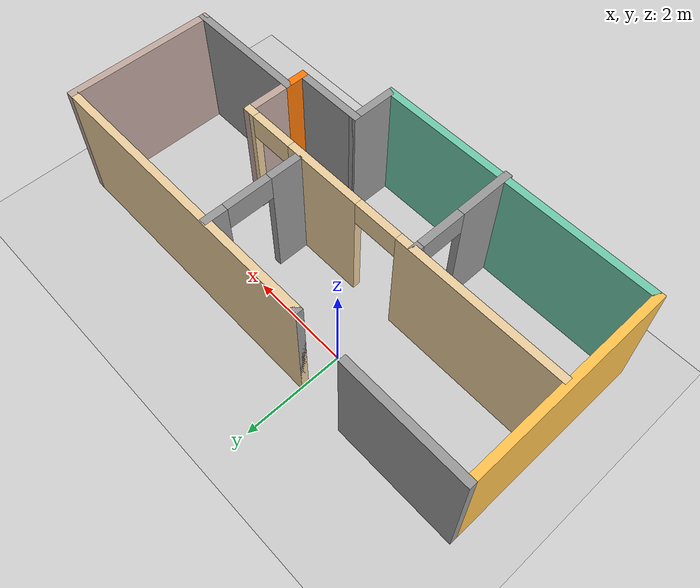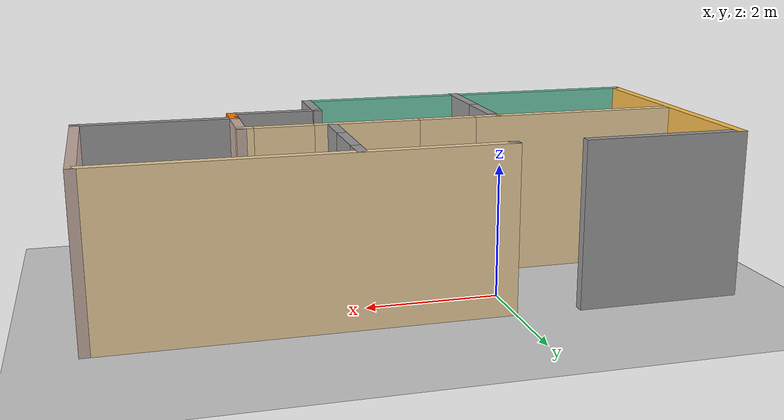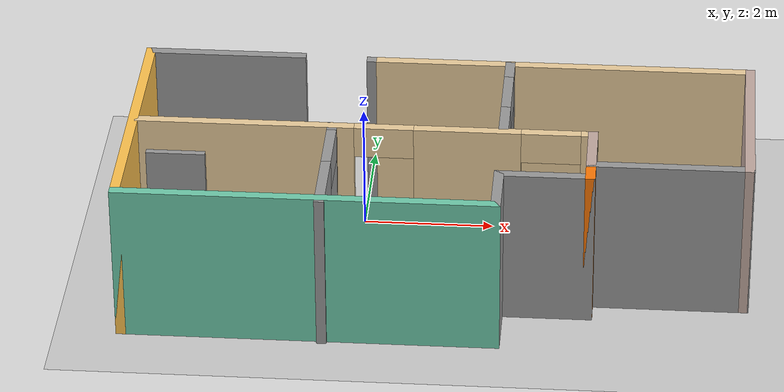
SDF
<sdf version="1.6">
 <world name="default">
  <light name="sun" type="directional">
   <pose>0 0 10 0 -0 0</pose>
   <diffuse>0.8 0.8 0.8 1</diffuse>
   <specular>0.2 0.2 0.2 1</specular>
   <attenuation>
    <range>1000</range>
    <constant>0.9</constant>
    <linear>0.01</linear>
    <quadratic>0.001</quadratic>
   </attenuation>
   <direction>-0.5 0.1 -0.9</direction>
  </light>
  <model name="ground_plane">
   <static>1</static>
   <link name="link">
    <collision name="collision">
     <geometry><plane><normal>0 0 1</normal><size>100 100</size></plane></geometry>
     <surface><friction><ode><mu>100</mu><mu2>50</mu2></ode></friction></surface>
    </collision>
    <visual name="visual">
     <cast_shadows>0</cast_shadows>
     <geometry><plane><normal>0 0 1</normal><size>100 100</size></plane></geometry>
     <material>
      <script><uri>file://media/materials/scripts/gazebo.material</uri><name>Gazebo/Grey</name></script>
     </material>
    </visual>
   </link>
  </model>
  <gravity>0 0 -9.8</gravity>
  <magnetic_field>6e-06 2.3e-05 -4.2e-05</magnetic_field>
  <atmosphere type="adiabatic"/>
  <physics name="default_physics" default="0" type="ode">
   <max_step_size>0.001</max_step_size>
   <real_time_factor>1</real_time_factor>
   <real_time_update_rate>1000</real_time_update_rate>
  </physics>
  <scene><ambient>0.4 0.4 0.4 1</ambient><background>0.7 0.7 0.7 1</background><shadows>1</shadows></scene>
  <spherical_coordinates>
   <surface_model>EARTH_WGS84</surface_model>
   <latitude_deg>0</latitude_deg>
   <longitude_deg>0</longitude_deg>
   <elevation>0</elevation>
   <heading_deg>0</heading_deg>
  </spherical_coordinates>
  <model name="building2">
   <pose>1.26202 -1.26646 0 0 -0 0</pose>
   <link name="Door_3">
    <collision name="Door_3_Collision">
     <geometry><box><size>0.9 0.17 2</size></box></geometry>
     <pose>0 0 1 0 -0 0</pose>
    </collision>
    <visual name="Door_3_Visual">
     <pose>0 0 1 0 -0 0</pose>
     <geometry><box><size>0.9 0.17 2</size></box></geometry>
     <material>
      <script><uri>file://media/materials/scripts/gazebo.material</uri><name>Gazebo/Grey</name></script>
     </material>
    </visual>
    <pose>-4.01 -0.065 0 0 -0 0</pose>
   </link>
   <link name="Wall_0">
    <collision name="Wall_0_Collision">
     <geometry><box><size>2.5 0.15 2.5</size></box></geometry>
     <pose>0 0 1.25 0 -0 0</pose>
    </collision>
    <visual name="Wall_0_Visual">
     <pose>0 0 1.25 0 -0 0</pose>
     <geometry><box><size>2.5 0.15 2.5</size></box></geometry>
     <material>
      <script><uri>file://media/materials/scripts/gazebo.material</uri><name>Gazebo/Grey</name></script>
      <ambient>1 1 1 1</ambient>
     </material>
     <meta><layer>0</layer></meta>
    </visual>
    <pose>-3.475 2.075 0 0 -0 3.14159</pose>
   </link>
   <link name="Wall_1">
    <collision name="Wall_1_Collision">
     <geometry><box><size>4.25 0.15 2.5</size></box></geometry>
     <pose>0 0 1.25 0 -0 0</pose>
    </collision>
    <visual name="Wall_1_Visual">
     <pose>0 0 1.25 0 -0 0</pose>
     <geometry><box><size>4.25 0.15 2.5</size></box></geometry>
     <material>
      <script><uri>file://media/materials/scripts/gazebo.material</uri><name>Gazebo/Grey</name></script>
      <ambient>1 0.764706 0.305882 1</ambient>
     </material>
     <meta><layer>0</layer></meta>
    </visual>
    <pose>-4.65 0.025 0 0 0 -1.5708</pose>
   </link>
   <link name="Wall_12">
    <collision name="Wall_12_Collision">
     <geometry><box><size>1 0.15 2.5</size></box></geometry>
     <pose>0 0 1.25 0 -0 0</pose>
    </collision>
    <visual name="Wall_12_Visual">
     <pose>0 0 1.25 0 -0 0</pose>
     <geometry><box><size>1 0.15 2.5</size></box></geometry>
     <material>
      <script><uri>file://media/materials/scripts/gazebo.material</uri><name>Gazebo/Grey</name></script>
      <ambient>0.760784 0.662745 0.627451 1</ambient>
     </material>
     <meta><layer>0</layer></meta>
    </visual>
    <pose>2.3 -0.4 0 0 -0 1.5708</pose>
   </link>
   <link name="Wall_13">
    <pose>-1.125 0.025 0 0 -0 3.14159</pose>
    <visual name="Wall_13_Visual_0">
     <pose>-3.3725 0 1.25 0 -0 0</pose>
     <geometry><box><size>0.255 0.15 2.5</size></box></geometry>
     <material>
      <script><uri>file://media/materials/scripts/gazebo.material</uri><name>Gazebo/Grey</name></script>
      <ambient>0.921569 0.807843 0.615686 1</ambient>
     </material>
     <meta><layer>0</layer></meta>
    </visual>
    <collision name="Wall_13_Collision_0">
     <geometry><box><size>0.255 0.15 2.5</size></box></geometry>
     <pose>-3.3725 0 1.25 0 -0 0</pose>
    </collision>
    <visual name="Wall_13_Visual_1">
     <pose>-1.535 0 1.25 0 -0 0</pose>
     <geometry><box><size>1.62 0.15 2.5</size></box></geometry>
     <material>
      <script><uri>file://media/materials/scripts/gazebo.material</uri><name>Gazebo/Grey</name></script>
      <ambient>0.921569 0.807843 0.615686 1</ambient>
     </material>
     <meta><layer>0</layer></meta>
    </visual>
    <collision name="Wall_13_Collision_1">
     <geometry><box><size>1.62 0.15 2.5</size></box></geometry>
     <pose>-1.535 0 1.25 0 -0 0</pose>
    </collision>
    <visual name="Wall_13_Visual_2">
     <pose>1.8375 0 1.25 0 -0 0</pose>
     <geometry><box><size>3.325 0.15 2.5</size></box></geometry>
     <material>
      <script><uri>file://media/materials/scripts/gazebo.material</uri><name>Gazebo/Grey</name></script>
      <ambient>0.921569 0.807843 0.615686 1</ambient>
     </material>
     <meta><layer>0</layer></meta>
    </visual>
    <collision name="Wall_13_Collision_2">
     <geometry><box><size>3.325 0.15 2.5</size></box></geometry>
     <pose>1.8375 0 1.25 0 -0 0</pose>
    </collision>
    <visual name="Wall_13_Visual_3">
     <pose>-2.795 0 2.25 0 -0 0</pose>
     <geometry><box><size>0.9 0.15 0.5</size></box></geometry>
     <material>
      <script><uri>file://media/materials/scripts/gazebo.material</uri><name>Gazebo/Grey</name></script>
      <ambient>0.921569 0.807843 0.615686 1</ambient>
     </material>
     <meta><layer>0</layer></meta>
    </visual>
    <collision name="Wall_13_Collision_3">
     <geometry><box><size>0.9 0.15 0.5</size></box></geometry>
     <pose>-2.795 0 2.25 0 -0 0</pose>
    </collision>
    <visual name="Wall_13_Visual_4">
     <pose>-0.275 0 2.25 0 -0 0</pose>
     <geometry><box><size>0.9 0.15 0.5</size></box></geometry>
     <material>
      <script><uri>file://media/materials/scripts/gazebo.material</uri><name>Gazebo/Grey</name></script>
      <ambient>0.921569 0.807843 0.615686 1</ambient>
     </material>
     <meta><layer>0</layer></meta>
    </visual>
    <collision name="Wall_13_Collision_4">
     <geometry><box><size>0.9 0.15 0.5</size></box></geometry>
     <pose>-0.275 0 2.25 0 -0 0</pose>
    </collision>
   </link>
   <link name="Wall_15">
    <pose>-1.63 -1.025 0 0 0 -1.5708</pose>
    <visual name="Wall_15_Visual_0">
     <pose>-1.0175 0 1.25 0 -0 0</pose>
     <geometry><box><size>0.215 0.15 2.5</size></box></geometry>
     <material>
      <script><uri>file://media/materials/scripts/gazebo.material</uri><name>Gazebo/Grey</name></script>
      <ambient>1 1 1 1</ambient>
     </material>
     <meta><layer>0</layer></meta>
    </visual>
    <collision name="Wall_15_Collision_0">
     <geometry><box><size>0.215 0.15 2.5</size></box></geometry>
     <pose>-1.0175 0 1.25 0 -0 0</pose>
    </collision>
    <visual name="Wall_15_Visual_1">
     <pose>0.5575 0 1.25 0 -0 0</pose>
     <geometry><box><size>1.135 0.15 2.5</size></box></geometry>
     <material>
      <script><uri>file://media/materials/scripts/gazebo.material</uri><name>Gazebo/Grey</name></script>
      <ambient>1 1 1 1</ambient>
     </material>
     <meta><layer>0</layer></meta>
    </visual>
    <collision name="Wall_15_Collision_1">
     <geometry><box><size>1.135 0.15 2.5</size></box></geometry>
     <pose>0.5575 0 1.25 0 -0 0</pose>
    </collision>
    <visual name="Wall_15_Visual_2">
     <pose>-0.46 0 2.25 0 -0 0</pose>
     <geometry><box><size>0.9 0.15 0.5</size></box></geometry>
     <material>
      <script><uri>file://media/materials/scripts/gazebo.material</uri><name>Gazebo/Grey</name></script>
      <ambient>1 1 1 1</ambient>
     </material>
     <meta><layer>0</layer></meta>
    </visual>
    <collision name="Wall_15_Collision_2">
     <geometry><box><size>0.9 0.15 0.5</size></box></geometry>
     <pose>-0.46 0 2.25 0 -0 0</pose>
    </collision>
   </link>
   <link name="Wall_17">
    <pose>0.95 1.08 0 0 0 -1.5708</pose>
    <visual name="Wall_17_Visual_0">
     <pose>-0.7775 0 1.25 0 -0 0</pose>
     <geometry><box><size>0.445 0.15 2.5</size></box></geometry>
     <material>
      <script><uri>file://media/materials/scripts/gazebo.material</uri><name>Gazebo/Grey</name></script>
      <ambient>1 1 1 1</ambient>
     </material>
     <meta><layer>0</layer></meta>
    </visual>
    <collision name="Wall_17_Collision_0">
     <geometry><box><size>0.445 0.15 2.5</size></box></geometry>
     <pose>-0.7775 0 1.25 0 -0 0</pose>
    </collision>
    <visual name="Wall_17_Visual_1">
     <pose>0.6725 0 1.25 0 -0 0</pose>
     <geometry><box><size>0.655 0.15 2.5</size></box></geometry>
     <material>
      <script><uri>file://media/materials/scripts/gazebo.material</uri><name>Gazebo/Grey</name></script>
      <ambient>1 1 1 1</ambient>
     </material>
     <meta><layer>0</layer></meta>
    </visual>
    <collision name="Wall_17_Collision_1">
     <geometry><box><size>0.655 0.15 2.5</size></box></geometry>
     <pose>0.6725 0 1.25 0 -0 0</pose>
    </collision>
    <visual name="Wall_17_Visual_2">
     <pose>-0.105 0 2.25 0 -0 0</pose>
     <geometry><box><size>0.9 0.15 0.5</size></box></geometry>
     <material>
      <script><uri>file://media/materials/scripts/gazebo.material</uri><name>Gazebo/Grey</name></script>
      <ambient>1 1 1 1</ambient>
     </material>
     <meta><layer>0</layer></meta>
    </visual>
    <collision name="Wall_17_Collision_2">
     <geometry><box><size>0.9 0.15 0.5</size></box></geometry>
     <pose>-0.105 0 2.25 0 -0 0</pose>
    </collision>
   </link>
   <link name="Wall_2">
    <collision name="Wall_2_Collision">
     <geometry><box><size>5.75 0.15 2.5</size></box></geometry>
     <pose>0 0 1.25 0 -0 0</pose>
    </collision>
    <visual name="Wall_2_Visual">
     <pose>0 0 1.25 0 -0 0</pose>
     <geometry><box><size>5.75 0.15 2.5</size></box></geometry>
     <material>
      <script><uri>file://media/materials/scripts/gazebo.material</uri><name>Gazebo/Grey</name></script>
      <ambient>0.435294 0.796078 0.67451 1</ambient>
     </material>
     <meta><layer>0</layer></meta>
    </visual>
    <pose>-1.85 -2.025 0 0 -0 0</pose>
   </link>
   <link name="Wall_3">
    <collision name="Wall_3_Collision">
     <geometry><box><size>1 0.15 2.5</size></box></geometry>
     <pose>0 0 1.25 0 -0 0</pose>
    </collision>
    <visual name="Wall_3_Visual">
     <pose>0 0 1.25 0 -0 0</pose>
     <geometry><box><size>1 0.15 2.5</size></box></geometry>
     <material>
      <script><uri>file://media/materials/scripts/gazebo.material</uri><name>Gazebo/Grey</name></script>
      <ambient>1 1 1 1</ambient>
     </material>
     <meta><layer>0</layer></meta>
    </visual>
    <pose>0.95 -1.6 0 0 -0 1.5708</pose>
   </link>
   <link name="Wall_4">
    <collision name="Wall_4_Collision">
     <geometry><box><size>1.5 0.15 2.5</size></box></geometry>
     <pose>0 0 1.25 0 -0 0</pose>
    </collision>
    <visual name="Wall_4_Visual">
     <pose>0 0 1.25 0 -0 0</pose>
     <geometry><box><size>1.5 0.15 2.5</size></box></geometry>
     <material>
      <script><uri>file://media/materials/scripts/gazebo.material</uri><name>Gazebo/Grey</name></script>
      <ambient>1 1 1 1</ambient>
     </material>
     <meta><layer>0</layer></meta>
    </visual>
    <pose>1.625 -1.175 0 0 -0 0</pose>
   </link>
   <link name="Wall_5">
    <collision name="Wall_5_Collision">
     <geometry><box><size>0.5 0.15 2.5</size></box></geometry>
     <pose>0 0 1.25 0 -0 0</pose>
    </collision>
    <visual name="Wall_5_Visual">
     <pose>0 0 1.25 0 -0 0</pose>
     <geometry><box><size>0.5 0.15 2.5</size></box></geometry>
     <material>
      <script><uri>file://media/materials/scripts/gazebo.material</uri><name>Gazebo/Grey</name></script>
      <ambient>0.996078 0.47451 0.0196078 1</ambient>
     </material>
     <meta><layer>0</layer></meta>
    </visual>
    <pose>2.3 -1 0 0 -0 1.5708</pose>
   </link>
   <link name="Wall_6">
    <collision name="Wall_6_Collision">
     <geometry><box><size>2.5 0.15 2.5</size></box></geometry>
     <pose>0 0 1.25 0 -0 0</pose>
    </collision>
    <visual name="Wall_6_Visual">
     <pose>0 0 1.25 0 -0 0</pose>
     <geometry><box><size>2.5 0.15 2.5</size></box></geometry>
     <material>
      <script><uri>file://media/materials/scripts/gazebo.material</uri><name>Gazebo/Grey</name></script>
      <ambient>1 1 1 1</ambient>
     </material>
     <meta><layer>0</layer></meta>
    </visual>
    <pose>3.475 -0.825 0 0 -0 0</pose>
   </link>
   <link name="Wall_7">
    <collision name="Wall_7_Collision">
     <geometry><box><size>3 0.15 2.5</size></box></geometry>
     <pose>0 0 1.25 0 -0 0</pose>
    </collision>
    <visual name="Wall_7_Visual">
     <pose>0 0 1.25 0 -0 0</pose>
     <geometry><box><size>3 0.15 2.5</size></box></geometry>
     <material>
      <script><uri>file://media/materials/scripts/gazebo.material</uri><name>Gazebo/Grey</name></script>
      <ambient>0.760784 0.662745 0.627451 1</ambient>
     </material>
     <meta><layer>0</layer></meta>
    </visual>
    <pose>4.65 0.6 0 0 -0 1.5708</pose>
   </link>
   <link name="Wall_8">
    <collision name="Wall_8_Collision">
     <geometry><box><size>6 0.15 2.5</size></box></geometry>
     <pose>0 0 1.25 0 -0 0</pose>
    </collision>
    <visual name="Wall_8_Visual">
     <pose>0 0 1.25 0 -0 0</pose>
     <geometry><box><size>6 0.15 2.5</size></box></geometry>
     <material>
      <script><uri>file://media/materials/scripts/gazebo.material</uri><name>Gazebo/Grey</name></script>
      <ambient>0.921569 0.807843 0.615686 1</ambient>
     </material>
     <meta><layer>0</layer></meta>
    </visual>
    <pose>1.725 2.025 0 0 -0 3.14159</pose>
   </link>
   <link name="Wall_9">
    <collision name="Wall_9_Collision">
     <geometry><box><size>0.15 0.15 2.5</size></box></geometry>
     <pose>0 0 1.25 0 -0 0</pose>
    </collision>
    <visual name="Wall_9_Visual">
     <pose>0 0 1.25 0 -0 0</pose>
     <geometry><box><size>0.15 0.15 2.5</size></box></geometry>
     <material>
      <script><uri>file://media/materials/scripts/gazebo.material</uri><name>Gazebo/Grey</name></script>
      <ambient>1 1 1 1</ambient>
     </material>
     <meta><layer>0</layer></meta>
    </visual>
    <pose>-1.2 2.025 0 0 -0 0</pose>
   </link>
   <static>1</static>
  </model>
 </world>
</sdf>
